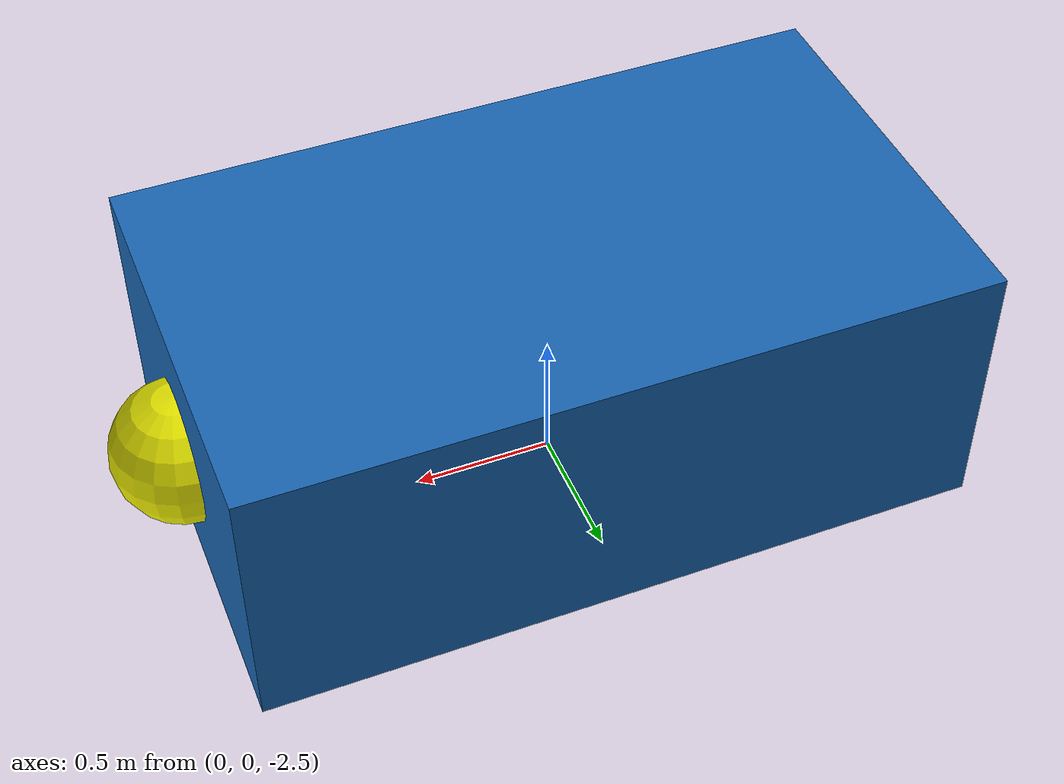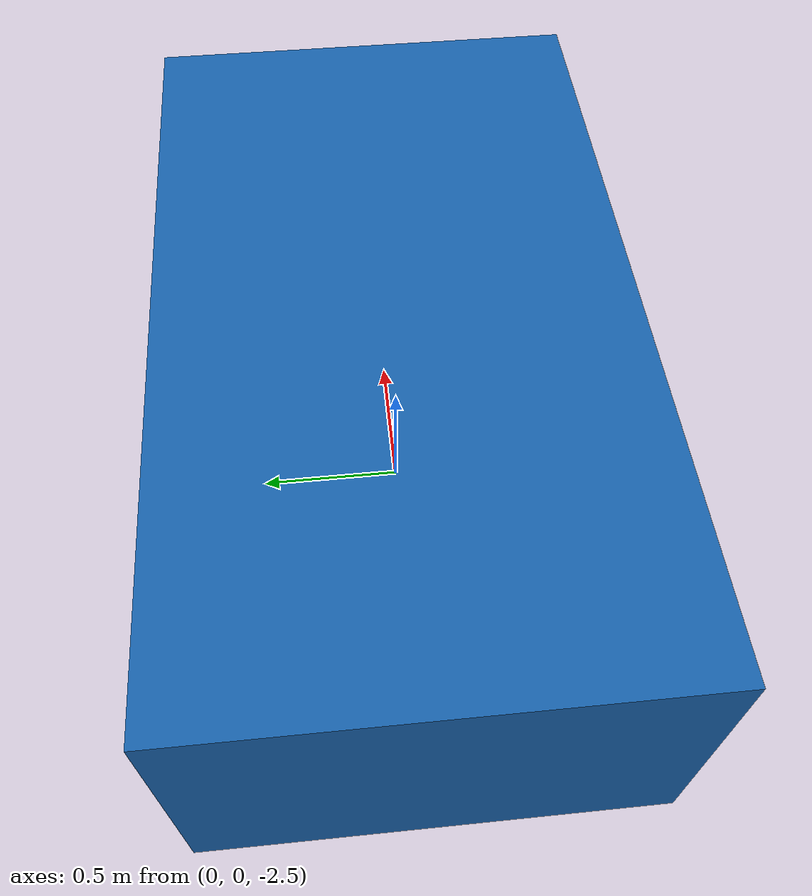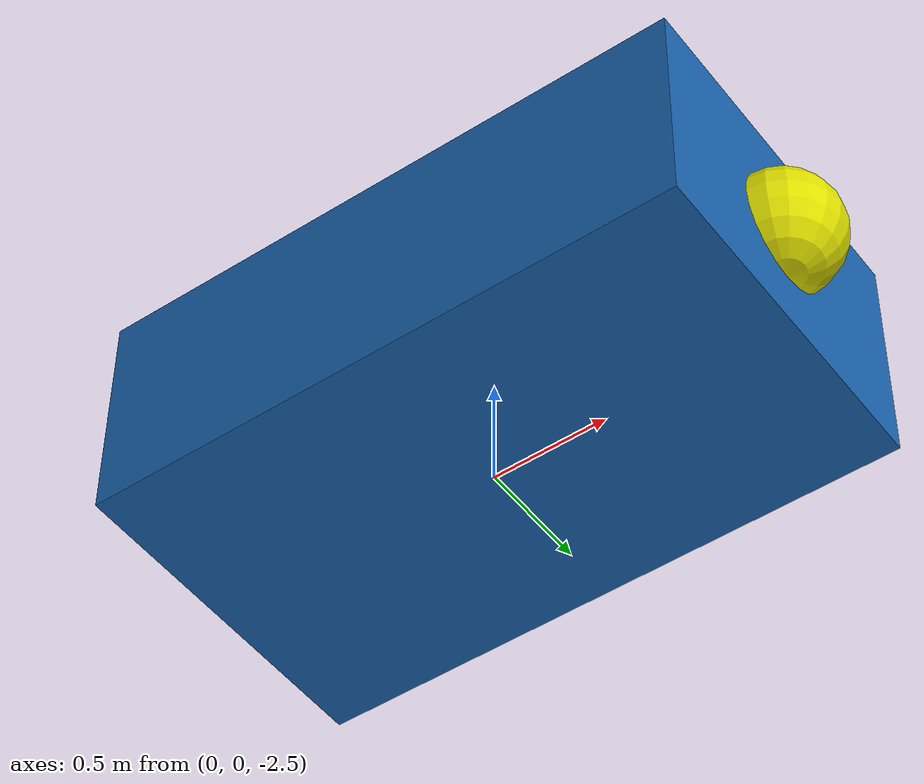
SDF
<?xml version="1.0" ?>
<sdf version="1.9">

  <model name="rexrov2">

    <pose>0 0 -2 0 0 0</pose>

    <link name="base_link">

      <inertial>

        <mass>1862.87</mass>

        <inertia>
          <ixx>525.97</ixx>
          <iyy>794.08</iyy>
          <izz>691.23</izz>

          <ixy>1.44</ixy>
          <ixz>33.41</ixz>
          <iyz>2.6</iyz>
        </inertia>

      </inertial>

      <!-- MAIN BODY -->

      <collision name="body_collision">

        <geometry>
          <box>
            <size>2.6 1.5 1.0</size>
          </box>
        </geometry>

      </collision>

      <visual name="body_visual">

        <geometry>
          <box>
            <size>2.6 1.5 1.0</size>
          </box>
        </geometry>

        <material>
          <ambient>0.1 0.4 0.7 1</ambient>
          <diffuse>0.1 0.4 0.7 1</diffuse>
        </material>

      </visual>

      <!-- SONAR DOME -->

      <visual name="sonar_visual">

        <pose>1.3 0 0 0 0 0</pose>

        <geometry>
          <sphere>
            <radius>0.25</radius>
          </sphere>
        </geometry>

        <material>
          <ambient>0.9 0.9 0.0 1</ambient>
          <diffuse>0.9 0.9 0.0 1</diffuse>
        </material>

      </visual>

      <!-- GPU SONAR -->

      <sensor name="sonar" type="gpu_lidar">

        <pose>1.3 0 0 0 0 0</pose>

        <topic>/rexrov2/sonar_pointcloud</topic>

        <update_rate>10</update_rate>

        <lidar>

          <scan>

            <horizontal>

              <samples>64</samples>

              <resolution>1</resolution>

              <min_angle>-0.785</min_angle>

              <max_angle>0.785</max_angle>

            </horizontal>

            <vertical>

              <samples>32</samples>

              <resolution>1</resolution>

              <min_angle>-0.523</min_angle>

              <max_angle>0.523</max_angle>

            </vertical>

          </scan>

          <range>

            <min>0.5</min>

            <max>30.0</max>

            <resolution>0.01</resolution>

          </range>

        </lidar>

        <always_on>true</always_on>

        <visualize>true</visualize>

      </sensor>

      <!-- ODOMETRY -->

      <sensor name="odometry" type="odometry">

        <topic>/rexrov2/pose_gt</topic>

        <update_rate>50</update_rate>

        <always_on>true</always_on>

      </sensor>

    </link>

  </model>

</sdf>
